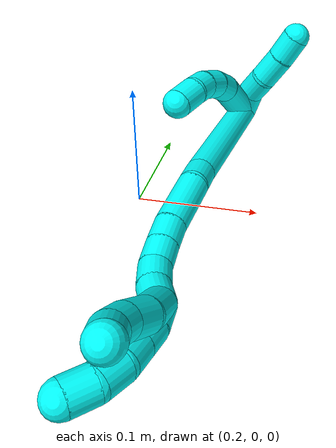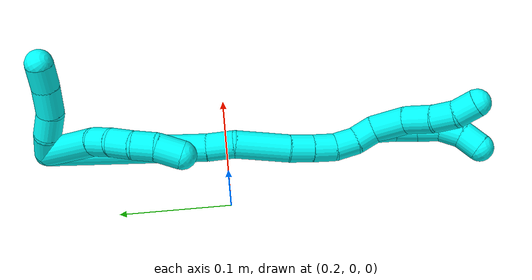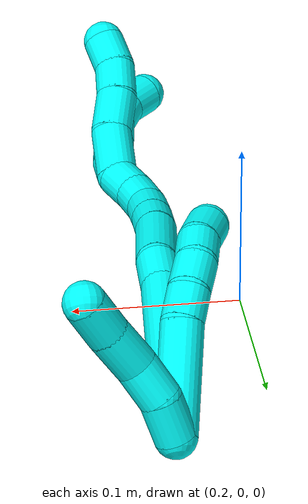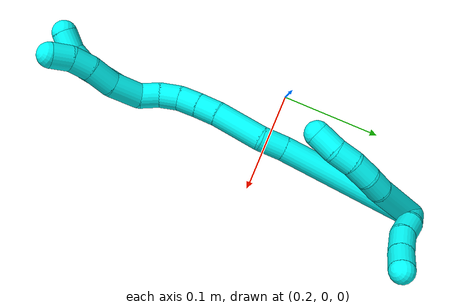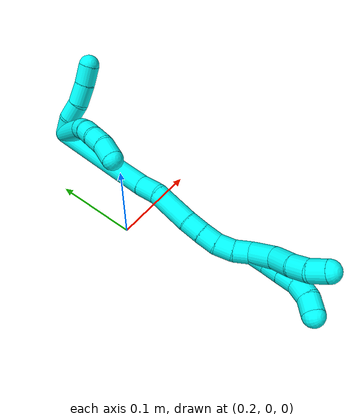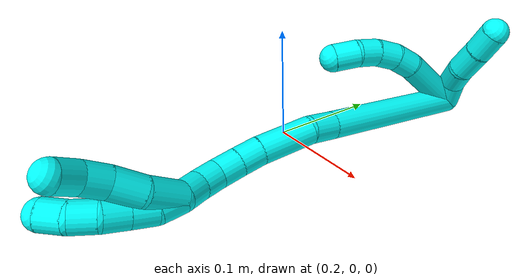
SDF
<sdf version="1.7">
 <world name="default">
  <model name="3">
   <static>0</static>
   <link name="3">
    <collision name="collision-cylinder-e_1_2_8">
     <pose>0.005641 -0.001709 -0.032306 3.08875 0.172638 2.54877</pose>
     <geometry><cylinder><radius>0.0125</radius><length>0.065678</length></cylinder></geometry>
     <surface>
      <friction><ode><mu>1.16</mu><mu2>1.16</mu2><slip1>0</slip1><slip2>0</slip2></ode></friction>
      <contact><ode><kp>1e+06</kp><kd>1</kd><max_vel>0</max_vel><min_depth>0.001</min_depth></ode></contact>
     </surface>
    </collision>
    <visual name="visual-cylinder-e_1_2_8">
     <pose>0.005641 -0.001709 -0.032306 3.08875 0.172638 2.54877</pose>
     <geometry><cylinder><radius>0.0125</radius><length>0.065678</length></cylinder></geometry>
     <material><ambient>0.003922 1 0.996078 1</ambient></material>
    </visual>
    <collision name="collision-cylinder-e_2_8_9">
     <pose>0.013619 -0.006022 -0.074143 2.87488 0.232193 1.43121</pose>
     <geometry><cylinder><radius>0.0125</radius><length>0.020305</length></cylinder></geometry>
     <surface>
      <friction><ode><mu>1.16</mu><mu2>1.16</mu2><slip1>0</slip1><slip2>0</slip2></ode></friction>
      <contact><ode><kp>1e+06</kp><kd>1</kd><max_vel>0</max_vel><min_depth>0.001</min_depth></ode></contact>
     </surface>
    </collision>
    <visual name="visual-cylinder-e_2_8_9">
     <pose>0.013619 -0.006022 -0.074143 2.87488 0.232193 1.43121</pose>
     <geometry><cylinder><radius>0.0125</radius><length>0.020305</length></cylinder></geometry>
     <material><ambient>0.003922 1 0.996078 1</ambient></material>
    </visual>
    <collision name="collision-cylinder-e_3_9_10">
     <pose>0.017459 -0.013603 -0.092831 2.64377 0.143293 0.550374</pose>
     <geometry><cylinder><radius>0.0125</radius><length>0.021061</length></cylinder></geometry>
     <surface>
      <friction><ode><mu>1.16</mu><mu2>1.16</mu2><slip1>0</slip1><slip2>0</slip2></ode></friction>
      <contact><ode><kp>1e+06</kp><kd>1</kd><max_vel>0</max_vel><min_depth>0.001</min_depth></ode></contact>
     </surface>
    </collision>
    <visual name="visual-cylinder-e_3_9_10">
     <pose>0.017459 -0.013603 -0.092831 2.64377 0.143293 0.550374</pose>
     <geometry><cylinder><radius>0.0125</radius><length>0.021061</length></cylinder></geometry>
     <material><ambient>0.003922 1 0.996078 1</ambient></material>
    </visual>
    <collision name="collision-cylinder-e_4_10_11">
     <pose>0.018535 -0.024738 -0.109912 2.48086 -0.042545 -0.123921</pose>
     <geometry><cylinder><radius>0.0125</radius><length>0.020088</length></cylinder></geometry>
     <surface>
      <friction><ode><mu>1.16</mu><mu2>1.16</mu2><slip1>0</slip1><slip2>0</slip2></ode></friction>
      <contact><ode><kp>1e+06</kp><kd>1</kd><max_vel>0</max_vel><min_depth>0.001</min_depth></ode></contact>
     </surface>
    </collision>
    <visual name="visual-cylinder-e_4_10_11">
     <pose>0.018535 -0.024738 -0.109912 2.48086 -0.042545 -0.123921</pose>
     <geometry><cylinder><radius>0.0125</radius><length>0.020088</length></cylinder></geometry>
     <material><ambient>0.003922 1 0.996078 1</ambient></material>
    </visual>
    <collision name="collision-cylinder-e_5_11_6">
     <pose>0.018533 -0.039874 -0.124902 2.23772 0.037175 0.076552</pose>
     <geometry><cylinder><radius>0.0125</radius><length>0.022867</length></cylinder></geometry>
     <surface>
      <friction><ode><mu>1.16</mu><mu2>1.16</mu2><slip1>0</slip1><slip2>0</slip2></ode></friction>
      <contact><ode><kp>1e+06</kp><kd>1</kd><max_vel>0</max_vel><min_depth>0.001</min_depth></ode></contact>
     </surface>
    </collision>
    <visual name="visual-cylinder-e_5_11_6">
     <pose>0.018533 -0.039874 -0.124902 2.23772 0.037175 0.076552</pose>
     <geometry><cylinder><radius>0.0125</radius><length>0.022867</length></cylinder></geometry>
     <material><ambient>0.003922 1 0.996078 1</ambient></material>
    </visual>
    <collision name="collision-cylinder-e_1_2_12">
     <pose>-8.9e-05 0.008487 -0.009256 -2.39954 -0.007059 0.018144</pose>
     <geometry><cylinder><radius>0.0125</radius><length>0.025116</length></cylinder></geometry>
     <surface>
      <friction><ode><mu>1.16</mu><mu2>1.16</mu2><slip1>0</slip1><slip2>0</slip2></ode></friction>
      <contact><ode><kp>1e+06</kp><kd>1</kd><max_vel>0</max_vel><min_depth>0.001</min_depth></ode></contact>
     </surface>
    </collision>
    <visual name="visual-cylinder-e_1_2_12">
     <pose>-8.9e-05 0.008487 -0.009256 -2.39954 -0.007059 0.018144</pose>
     <geometry><cylinder><radius>0.0125</radius><length>0.025116</length></cylinder></geometry>
     <material><ambient>0.003922 1 0.996078 1</ambient></material>
    </visual>
    <collision name="collision-cylinder-e_2_12_13">
     <pose>-0.00353 0.024127 -0.02725 -2.45556 -0.288629 0.772918</pose>
     <geometry><cylinder><radius>0.0125</radius><length>0.02356</length></cylinder></geometry>
     <surface>
      <friction><ode><mu>1.16</mu><mu2>1.16</mu2><slip1>0</slip1><slip2>0</slip2></ode></friction>
      <contact><ode><kp>1e+06</kp><kd>1</kd><max_vel>0</max_vel><min_depth>0.001</min_depth></ode></contact>
     </surface>
    </collision>
    <visual name="visual-cylinder-e_2_12_13">
     <pose>-0.00353 0.024127 -0.02725 -2.45556 -0.288629 0.772918</pose>
     <geometry><cylinder><radius>0.0125</radius><length>0.02356</length></cylinder></geometry>
     <material><ambient>0.003922 1 0.996078 1</ambient></material>
    </visual>
    <collision name="collision-cylinder-e_3_13_14">
     <pose>-0.01008 0.04194 -0.043462 -2.18225 -0.240811 0.457052</pose>
     <geometry><cylinder><radius>0.0125</radius><length>0.02681</length></cylinder></geometry>
     <surface>
      <friction><ode><mu>1.16</mu><mu2>1.16</mu2><slip1>0</slip1><slip2>0</slip2></ode></friction>
      <contact><ode><kp>1e+06</kp><kd>1</kd><max_vel>0</max_vel><min_depth>0.001</min_depth></ode></contact>
     </surface>
    </collision>
    <visual name="visual-cylinder-e_3_13_14">
     <pose>-0.01008 0.04194 -0.043462 -2.18225 -0.240811 0.457052</pose>
     <geometry><cylinder><radius>0.0125</radius><length>0.02681</length></cylinder></geometry>
     <material><ambient>0.003922 1 0.996078 1</ambient></material>
    </visual>
    <collision name="collision-cylinder-e_4_14_5">
     <pose>-0.015208 0.062774 -0.05749 -2.14314 -0.158137 0.288589</pose>
     <geometry><cylinder><radius>0.0125</radius><length>0.024513</length></cylinder></geometry>
     <surface>
      <friction><ode><mu>1.16</mu><mu2>1.16</mu2><slip1>0</slip1><slip2>0</slip2></ode></friction>
      <contact><ode><kp>1e+06</kp><kd>1</kd><max_vel>0</max_vel><min_depth>0.001</min_depth></ode></contact>
     </surface>
    </collision>
    <visual name="visual-cylinder-e_4_14_5">
     <pose>-0.015208 0.062774 -0.05749 -2.14314 -0.158137 0.288589</pose>
     <geometry><cylinder><radius>0.0125</radius><length>0.024513</length></cylinder></geometry>
     <material><ambient>0.003922 1 0.996078 1</ambient></material>
    </visual>
    <collision name="collision-cylinder-e_1_2_15">
     <pose>-0.012661 -0.042595 -0.056659 2.49695 -0.176744 -0.518659</pose>
     <geometry><cylinder><radius>0.0125</radius><length>0.144013</length></cylinder></geometry>
     <surface>
      <friction><ode><mu>1.16</mu><mu2>1.16</mu2><slip1>0</slip1><slip2>0</slip2></ode></friction>
      <contact><ode><kp>1e+06</kp><kd>1</kd><max_vel>0</max_vel><min_depth>0.001</min_depth></ode></contact>
     </surface>
    </collision>
    <visual name="visual-cylinder-e_1_2_15">
     <pose>-0.012661 -0.042595 -0.056659 2.49695 -0.176744 -0.518659</pose>
     <geometry><cylinder><radius>0.0125</radius><length>0.144013</length></cylinder></geometry>
     <material><ambient>0.003922 1 0.996078 1</ambient></material>
    </visual>
    <collision name="collision-cylinder-e_2_15_16">
     <pose>-0.028072 -0.091597 -0.123519 2.58082 -0.224487 -0.74617</pose>
     <geometry><cylinder><radius>0.0125</radius><length>0.024711</length></cylinder></geometry>
     <surface>
      <friction><ode><mu>1.16</mu><mu2>1.16</mu2><slip1>0</slip1><slip2>0</slip2></ode></friction>
      <contact><ode><kp>1e+06</kp><kd>1</kd><max_vel>0</max_vel><min_depth>0.001</min_depth></ode></contact>
     </surface>
    </collision>
    <visual name="visual-cylinder-e_2_15_16">
     <pose>-0.028072 -0.091597 -0.123519 2.58082 -0.224487 -0.74617</pose>
     <geometry><cylinder><radius>0.0125</radius><length>0.024711</length></cylinder></geometry>
     <material><ambient>0.003922 1 0.996078 1</ambient></material>
    </visual>
    <collision name="collision-cylinder-e_3_16_17">
     <pose>-0.035897 -0.116076 -0.149482 2.28804 -0.208563 -0.452448</pose>
     <geometry><cylinder><radius>0.0125</radius><length>0.049024</length></cylinder></geometry>
     <surface>
      <friction><ode><mu>1.16</mu><mu2>1.16</mu2><slip1>0</slip1><slip2>0</slip2></ode></friction>
      <contact><ode><kp>1e+06</kp><kd>1</kd><max_vel>0</max_vel><min_depth>0.001</min_depth></ode></contact>
     </surface>
    </collision>
    <visual name="visual-cylinder-e_3_16_17">
     <pose>-0.035897 -0.116076 -0.149482 2.28804 -0.208563 -0.452448</pose>
     <geometry><cylinder><radius>0.0125</radius><length>0.049024</length></cylinder></geometry>
     <material><ambient>0.003922 1 0.996078 1</ambient></material>
    </visual>
    <collision name="collision-cylinder-e_4_17_18">
     <pose>-0.044259 -0.141824 -0.171787 2.27656 -0.315012 -0.662666</pose>
     <geometry><cylinder><radius>0.0125</radius><length>0.021215</length></cylinder></geometry>
     <surface>
      <friction><ode><mu>1.16</mu><mu2>1.16</mu2><slip1>0</slip1><slip2>0</slip2></ode></friction>
      <contact><ode><kp>1e+06</kp><kd>1</kd><max_vel>0</max_vel><min_depth>0.001</min_depth></ode></contact>
     </surface>
    </collision>
    <visual name="visual-cylinder-e_4_17_18">
     <pose>-0.044259 -0.141824 -0.171787 2.27656 -0.315012 -0.662666</pose>
     <geometry><cylinder><radius>0.0125</radius><length>0.021215</length></cylinder></geometry>
     <material><ambient>0.003922 1 0.996078 1</ambient></material>
    </visual>
    <collision name="collision-cylinder-e_5_18_19">
     <pose>-0.051129 -0.156717 -0.184803 2.30209 -0.354013 -0.762435</pose>
     <geometry><cylinder><radius>0.0125</radius><length>0.020673</length></cylinder></geometry>
     <surface>
      <friction><ode><mu>1.16</mu><mu2>1.16</mu2><slip1>0</slip1><slip2>0</slip2></ode></friction>
      <contact><ode><kp>1e+06</kp><kd>1</kd><max_vel>0</max_vel><min_depth>0.001</min_depth></ode></contact>
     </surface>
    </collision>
    <visual name="visual-cylinder-e_5_18_19">
     <pose>-0.051129 -0.156717 -0.184803 2.30209 -0.354013 -0.762435</pose>
     <geometry><cylinder><radius>0.0125</radius><length>0.020673</length></cylinder></geometry>
     <material><ambient>0.003922 1 0.996078 1</ambient></material>
    </visual>
    <collision name="collision-cylinder-e_6_19_20">
     <pose>-0.059656 -0.169042 -0.198432 2.5215 -0.512301 -1.37063</pose>
     <geometry><cylinder><radius>0.0125</radius><length>0.020172</length></cylinder></geometry>
     <surface>
      <friction><ode><mu>1.16</mu><mu2>1.16</mu2><slip1>0</slip1><slip2>0</slip2></ode></friction>
      <contact><ode><kp>1e+06</kp><kd>1</kd><max_vel>0</max_vel><min_depth>0.001</min_depth></ode></contact>
     </surface>
    </collision>
    <visual name="visual-cylinder-e_6_19_20">
     <pose>-0.059656 -0.169042 -0.198432 2.5215 -0.512301 -1.37063</pose>
     <geometry><cylinder><radius>0.0125</radius><length>0.020172</length></cylinder></geometry>
     <material><ambient>0.003922 1 0.996078 1</ambient></material>
    </visual>
    <collision name="collision-cylinder-e_7_20_1">
     <pose>-0.070658 -0.176919 -0.213175 2.79175 -0.643539 -2.16663</pose>
     <geometry><cylinder><radius>0.0125</radius><length>0.020193</length></cylinder></geometry>
     <surface>
      <friction><ode><mu>1.16</mu><mu2>1.16</mu2><slip1>0</slip1><slip2>0</slip2></ode></friction>
      <contact><ode><kp>1e+06</kp><kd>1</kd><max_vel>0</max_vel><min_depth>0.001</min_depth></ode></contact>
     </surface>
    </collision>
    <visual name="visual-cylinder-e_7_20_1">
     <pose>-0.070658 -0.176919 -0.213175 2.79175 -0.643539 -2.16663</pose>
     <geometry><cylinder><radius>0.0125</radius><length>0.020193</length></cylinder></geometry>
     <material><ambient>0.003922 1 0.996078 1</ambient></material>
    </visual>
    <collision name="collision-cylinder-e_1_1_21">
     <pose>-0.077892 -0.18269 -0.236387 2.95173 -0.073753 -0.739283</pose>
     <geometry><cylinder><radius>0.0125</radius><length>0.031909</length></cylinder></geometry>
     <surface>
      <friction><ode><mu>1.16</mu><mu2>1.16</mu2><slip1>0</slip1><slip2>0</slip2></ode></friction>
      <contact><ode><kp>1e+06</kp><kd>1</kd><max_vel>0</max_vel><min_depth>0.001</min_depth></ode></contact>
     </surface>
    </collision>
    <visual name="visual-cylinder-e_1_1_21">
     <pose>-0.077892 -0.18269 -0.236387 2.95173 -0.073753 -0.739283</pose>
     <geometry><cylinder><radius>0.0125</radius><length>0.031909</length></cylinder></geometry>
     <material><ambient>0.003922 1 0.996078 1</ambient></material>
    </visual>
    <collision name="collision-cylinder-e_2_21_22">
     <pose>-0.07694 -0.189046 -0.264587 2.88104 0.162067 1.10978</pose>
     <geometry><cylinder><radius>0.0125</radius><length>0.026374</length></cylinder></geometry>
     <surface>
      <friction><ode><mu>1.16</mu><mu2>1.16</mu2><slip1>0</slip1><slip2>0</slip2></ode></friction>
      <contact><ode><kp>1e+06</kp><kd>1</kd><max_vel>0</max_vel><min_depth>0.001</min_depth></ode></contact>
     </surface>
    </collision>
    <visual name="visual-cylinder-e_2_21_22">
     <pose>-0.07694 -0.189046 -0.264587 2.88104 0.162067 1.10978</pose>
     <geometry><cylinder><radius>0.0125</radius><length>0.026374</length></cylinder></geometry>
     <material><ambient>0.003922 1 0.996078 1</ambient></material>
    </visual>
    <collision name="collision-cylinder-e_3_22_23">
     <pose>-0.075041 -0.194793 -0.287505 2.91408 -0.021595 -0.188465</pose>
     <geometry><cylinder><radius>0.0125</radius><length>0.021239</length></cylinder></geometry>
     <surface>
      <friction><ode><mu>1.16</mu><mu2>1.16</mu2><slip1>0</slip1><slip2>0</slip2></ode></friction>
      <contact><ode><kp>1e+06</kp><kd>1</kd><max_vel>0</max_vel><min_depth>0.001</min_depth></ode></contact>
     </surface>
    </collision>
    <visual name="visual-cylinder-e_3_22_23">
     <pose>-0.075041 -0.194793 -0.287505 2.91408 -0.021595 -0.188465</pose>
     <geometry><cylinder><radius>0.0125</radius><length>0.021239</length></cylinder></geometry>
     <material><ambient>0.003922 1 0.996078 1</ambient></material>
    </visual>
    <collision name="collision-cylinder-e_4_23_4">
     <pose>-0.078067 -0.197931 -0.307671 3.0661 -0.276641 -2.61177</pose>
     <geometry><cylinder><radius>0.0125</radius><length>0.020478</length></cylinder></geometry>
     <surface>
      <friction><ode><mu>1.16</mu><mu2>1.16</mu2><slip1>0</slip1><slip2>0</slip2></ode></friction>
      <contact><ode><kp>1e+06</kp><kd>1</kd><max_vel>0</max_vel><min_depth>0.001</min_depth></ode></contact>
     </surface>
    </collision>
    <visual name="visual-cylinder-e_4_23_4">
     <pose>-0.078067 -0.197931 -0.307671 3.0661 -0.276641 -2.61177</pose>
     <geometry><cylinder><radius>0.0125</radius><length>0.020478</length></cylinder></geometry>
     <material><ambient>0.003922 1 0.996078 1</ambient></material>
    </visual>
    <collision name="collision-cylinder-e_1_1_24">
     <pose>-0.079822 -0.186162 -0.227722 2.39233 -0.315741 -0.769392</pose>
     <geometry><cylinder><radius>0.0125</radius><length>0.02</length></cylinder></geometry>
     <surface>
      <friction><ode><mu>1.16</mu><mu2>1.16</mu2><slip1>0</slip1><slip2>0</slip2></ode></friction>
      <contact><ode><kp>1e+06</kp><kd>1</kd><max_vel>0</max_vel><min_depth>0.001</min_depth></ode></contact>
     </surface>
    </collision>
    <visual name="visual-cylinder-e_1_1_24">
     <pose>-0.079822 -0.186162 -0.227722 2.39233 -0.315741 -0.769392</pose>
     <geometry><cylinder><radius>0.0125</radius><length>0.02</length></cylinder></geometry>
     <material><ambient>0.003922 1 0.996078 1</ambient></material>
    </visual>
    <collision name="collision-cylinder-e_2_24_25">
     <pose>-0.083634 -0.198067 -0.243049 2.56589 -0.070759 -0.237961</pose>
     <geometry><cylinder><radius>0.0125</radius><length>0.02</length></cylinder></geometry>
     <surface>
      <friction><ode><mu>1.16</mu><mu2>1.16</mu2><slip1>0</slip1><slip2>0</slip2></ode></friction>
      <contact><ode><kp>1e+06</kp><kd>1</kd><max_vel>0</max_vel><min_depth>0.001</min_depth></ode></contact>
     </surface>
    </collision>
    <visual name="visual-cylinder-e_2_24_25">
     <pose>-0.083634 -0.198067 -0.243049 2.56589 -0.070759 -0.237961</pose>
     <geometry><cylinder><radius>0.0125</radius><length>0.02</length></cylinder></geometry>
     <material><ambient>0.003922 1 0.996078 1</ambient></material>
    </visual>
    <collision name="collision-cylinder-e_3_25_26">
     <pose>-0.085038 -0.208714 -0.259919 2.59131 -0.069754 -0.245945</pose>
     <geometry><cylinder><radius>0.0125</radius><length>0.02</length></cylinder></geometry>
     <surface>
      <friction><ode><mu>1.16</mu><mu2>1.16</mu2><slip1>0</slip1><slip2>0</slip2></ode></friction>
      <contact><ode><kp>1e+06</kp><kd>1</kd><max_vel>0</max_vel><min_depth>0.001</min_depth></ode></contact>
     </surface>
    </collision>
    <visual name="visual-cylinder-e_3_25_26">
     <pose>-0.085038 -0.208714 -0.259919 2.59131 -0.069754 -0.245945</pose>
     <geometry><cylinder><radius>0.0125</radius><length>0.02</length></cylinder></geometry>
     <material><ambient>0.003922 1 0.996078 1</ambient></material>
    </visual>
    <collision name="collision-cylinder-e_4_26_27">
     <pose>-0.083983 -0.220671 -0.275598 2.38746 0.176078 0.438608</pose>
     <geometry><cylinder><radius>0.0125</radius><length>0.02</length></cylinder></geometry>
     <surface>
      <friction><ode><mu>1.16</mu><mu2>1.16</mu2><slip1>0</slip1><slip2>0</slip2></ode></friction>
      <contact><ode><kp>1e+06</kp><kd>1</kd><max_vel>0</max_vel><min_depth>0.001</min_depth></ode></contact>
     </surface>
    </collision>
    <visual name="visual-cylinder-e_4_26_27">
     <pose>-0.083983 -0.220671 -0.275598 2.38746 0.176078 0.438608</pose>
     <geometry><cylinder><radius>0.0125</radius><length>0.02</length></cylinder></geometry>
     <material><ambient>0.003922 1 0.996078 1</ambient></material>
    </visual>
    <collision name="collision-cylinder-e_5_27_3">
     <pose>-0.077735 -0.234692 -0.287949 2.18875 0.466313 0.862547</pose>
     <geometry><cylinder><radius>0.0125</radius><length>0.02</length></cylinder></geometry>
     <surface>
      <friction><ode><mu>1.16</mu><mu2>1.16</mu2><slip1>0</slip1><slip2>0</slip2></ode></friction>
      <contact><ode><kp>1e+06</kp><kd>1</kd><max_vel>0</max_vel><min_depth>0.001</min_depth></ode></contact>
     </surface>
    </collision>
    <visual name="visual-cylinder-e_5_27_3">
     <pose>-0.077735 -0.234692 -0.287949 2.18875 0.466313 0.862547</pose>
     <geometry><cylinder><radius>0.0125</radius><length>0.02</length></cylinder></geometry>
     <material><ambient>0.003922 1 0.996078 1</ambient></material>
    </visual>
    <collision name="collision-sphere-3">
     <pose>-0.073239 -0.241973 -0.293125 0 -0 0</pose>
     <geometry><sphere><radius>0.0125</radius></sphere></geometry>
     <surface>
      <friction><ode><mu>1.16</mu><mu2>1.16</mu2><slip1>0</slip1><slip2>0</slip2></ode></friction>
      <contact><ode><kp>1e+06</kp><kd>1</kd><max_vel>0</max_vel><min_depth>0.001</min_depth></ode></contact>
     </surface>
    </collision>
    <visual name="visual-sphere-3">
     <pose>-0.073239 -0.241973 -0.293125 0 -0 0</pose>
     <geometry><sphere><radius>0.0125</radius></sphere></geometry>
     <material><ambient>0.003922 1 0.996078 1</ambient></material>
    </visual>
    <collision name="collision-sphere-27">
     <pose>-0.082231 -0.227412 -0.282774 0 -0 0</pose>
     <geometry><sphere><radius>0.0125</radius></sphere></geometry>
     <surface>
      <friction><ode><mu>1.16</mu><mu2>1.16</mu2><slip1>0</slip1><slip2>0</slip2></ode></friction>
      <contact><ode><kp>1e+06</kp><kd>1</kd><max_vel>0</max_vel><min_depth>0.001</min_depth></ode></contact>
     </surface>
    </collision>
    <visual name="visual-sphere-27">
     <pose>-0.082231 -0.227412 -0.282774 0 -0 0</pose>
     <geometry><sphere><radius>0.0125</radius></sphere></geometry>
     <material><ambient>0.003922 1 0.996078 1</ambient></material>
    </visual>
    <collision name="collision-sphere-26">
     <pose>-0.085735 -0.21393 -0.268422 0 -0 0</pose>
     <geometry><sphere><radius>0.0125</radius></sphere></geometry>
     <surface>
      <friction><ode><mu>1.16</mu><mu2>1.16</mu2><slip1>0</slip1><slip2>0</slip2></ode></friction>
      <contact><ode><kp>1e+06</kp><kd>1</kd><max_vel>0</max_vel><min_depth>0.001</min_depth></ode></contact>
     </surface>
    </collision>
    <visual name="visual-sphere-26">
     <pose>-0.085735 -0.21393 -0.268422 0 -0 0</pose>
     <geometry><sphere><radius>0.0125</radius></sphere></geometry>
     <material><ambient>0.003922 1 0.996078 1</ambient></material>
    </visual>
    <collision name="collision-sphere-25">
     <pose>-0.084341 -0.203497 -0.251416 0 -0 0</pose>
     <geometry><sphere><radius>0.0125</radius></sphere></geometry>
     <surface>
      <friction><ode><mu>1.16</mu><mu2>1.16</mu2><slip1>0</slip1><slip2>0</slip2></ode></friction>
      <contact><ode><kp>1e+06</kp><kd>1</kd><max_vel>0</max_vel><min_depth>0.001</min_depth></ode></contact>
     </surface>
    </collision>
    <visual name="visual-sphere-25">
     <pose>-0.084341 -0.203497 -0.251416 0 -0 0</pose>
     <geometry><sphere><radius>0.0125</radius></sphere></geometry>
     <material><ambient>0.003922 1 0.996078 1</ambient></material>
    </visual>
    <collision name="collision-sphere-24">
     <pose>-0.082927 -0.192636 -0.234682 0 -0 0</pose>
     <geometry><sphere><radius>0.0125</radius></sphere></geometry>
     <surface>
      <friction><ode><mu>1.16</mu><mu2>1.16</mu2><slip1>0</slip1><slip2>0</slip2></ode></friction>
      <contact><ode><kp>1e+06</kp><kd>1</kd><max_vel>0</max_vel><min_depth>0.001</min_depth></ode></contact>
     </surface>
    </collision>
    <visual name="visual-sphere-24">
     <pose>-0.082927 -0.192636 -0.234682 0 -0 0</pose>
     <geometry><sphere><radius>0.0125</radius></sphere></geometry>
     <material><ambient>0.003922 1 0.996078 1</ambient></material>
    </visual>
    <collision name="collision-sphere-4">
     <pose>-0.080864 -0.198674 -0.317493 0 -0 0</pose>
     <geometry><sphere><radius>0.0125</radius></sphere></geometry>
     <surface>
      <friction><ode><mu>1.16</mu><mu2>1.16</mu2><slip1>0</slip1><slip2>0</slip2></ode></friction>
      <contact><ode><kp>1e+06</kp><kd>1</kd><max_vel>0</max_vel><min_depth>0.001</min_depth></ode></contact>
     </surface>
    </collision>
    <visual name="visual-sphere-4">
     <pose>-0.080864 -0.198674 -0.317493 0 -0 0</pose>
     <geometry><sphere><radius>0.0125</radius></sphere></geometry>
     <material><ambient>0.003922 1 0.996078 1</ambient></material>
    </visual>
    <collision name="collision-sphere-23">
     <pose>-0.075271 -0.197188 -0.297849 0 -0 0</pose>
     <geometry><sphere><radius>0.0125</radius></sphere></geometry>
     <surface>
      <friction><ode><mu>1.16</mu><mu2>1.16</mu2><slip1>0</slip1><slip2>0</slip2></ode></friction>
      <contact><ode><kp>1e+06</kp><kd>1</kd><max_vel>0</max_vel><min_depth>0.001</min_depth></ode></contact>
     </surface>
    </collision>
    <visual name="visual-sphere-23">
     <pose>-0.075271 -0.197188 -0.297849 0 -0 0</pose>
     <geometry><sphere><radius>0.0125</radius></sphere></geometry>
     <material><ambient>0.003922 1 0.996078 1</ambient></material>
    </visual>
    <collision name="collision-sphere-22">
     <pose>-0.074812 -0.192398 -0.277162 0 -0 0</pose>
     <geometry><sphere><radius>0.0125</radius></sphere></geometry>
     <surface>
      <friction><ode><mu>1.16</mu><mu2>1.16</mu2><slip1>0</slip1><slip2>0</slip2></ode></friction>
      <contact><ode><kp>1e+06</kp><kd>1</kd><max_vel>0</max_vel><min_depth>0.001</min_depth></ode></contact>
     </surface>
    </collision>
    <visual name="visual-sphere-22">
     <pose>-0.074812 -0.192398 -0.277162 0 -0 0</pose>
     <geometry><sphere><radius>0.0125</radius></sphere></geometry>
     <material><ambient>0.003922 1 0.996078 1</ambient></material>
    </visual>
    <collision name="collision-sphere-21">
     <pose>-0.079068 -0.185693 -0.252012 0 -0 0</pose>
     <geometry><sphere><radius>0.0125</radius></sphere></geometry>
     <surface>
      <friction><ode><mu>1.16</mu><mu2>1.16</mu2><slip1>0</slip1><slip2>0</slip2></ode></friction>
      <contact><ode><kp>1e+06</kp><kd>1</kd><max_vel>0</max_vel><min_depth>0.001</min_depth></ode></contact>
     </surface>
    </collision>
    <visual name="visual-sphere-21">
     <pose>-0.079068 -0.185693 -0.252012 0 -0 0</pose>
     <geometry><sphere><radius>0.0125</radius></sphere></geometry>
     <material><ambient>0.003922 1 0.996078 1</ambient></material>
    </visual>
    <collision name="collision-sphere-1">
     <pose>-0.076716 -0.179687 -0.220762 0 -0 0</pose>
     <geometry><sphere><radius>0.0125</radius></sphere></geometry>
     <surface>
      <friction><ode><mu>1.16</mu><mu2>1.16</mu2><slip1>0</slip1><slip2>0</slip2></ode></friction>
      <contact><ode><kp>1e+06</kp><kd>1</kd><max_vel>0</max_vel><min_depth>0.001</min_depth></ode></contact>
     </surface>
    </collision>
    <visual name="visual-sphere-1">
     <pose>-0.076716 -0.179687 -0.220762 0 -0 0</pose>
     <geometry><sphere><radius>0.0125</radius></sphere></geometry>
     <material><ambient>0.003922 1 0.996078 1</ambient></material>
    </visual>
    <collision name="collision-sphere-6">
     <pose>0.018958 -0.048851 -0.13197 0 -0 0</pose>
     <geometry><sphere><radius>0.0125</radius></sphere></geometry>
     <surface>
      <friction><ode><mu>1.16</mu><mu2>1.16</mu2><slip1>0</slip1><slip2>0</slip2></ode></friction>
      <contact><ode><kp>1e+06</kp><kd>1</kd><max_vel>0</max_vel><min_depth>0.001</min_depth></ode></contact>
     </surface>
    </collision>
    <visual name="visual-sphere-6">
     <pose>0.018958 -0.048851 -0.13197 0 -0 0</pose>
     <geometry><sphere><radius>0.0125</radius></sphere></geometry>
     <material><ambient>0.003922 1 0.996078 1</ambient></material>
    </visual>
    <collision name="collision-sphere-11">
     <pose>0.018108 -0.030896 -0.117834 0 -0 0</pose>
     <geometry><sphere><radius>0.0125</radius></sphere></geometry>
     <surface>
      <friction><ode><mu>1.16</mu><mu2>1.16</mu2><slip1>0</slip1><slip2>0</slip2></ode></friction>
      <contact><ode><kp>1e+06</kp><kd>1</kd><max_vel>0</max_vel><min_depth>0.001</min_depth></ode></contact>
     </surface>
    </collision>
    <visual name="visual-sphere-11">
     <pose>0.018108 -0.030896 -0.117834 0 -0 0</pose>
     <geometry><sphere><radius>0.0125</radius></sphere></geometry>
     <material><ambient>0.003922 1 0.996078 1</ambient></material>
    </visual>
    <collision name="collision-sphere-10">
     <pose>0.018962 -0.01858 -0.101989 0 -0 0</pose>
     <geometry><sphere><radius>0.0125</radius></sphere></geometry>
     <surface>
      <friction><ode><mu>1.16</mu><mu2>1.16</mu2><slip1>0</slip1><slip2>0</slip2></ode></friction>
      <contact><ode><kp>1e+06</kp><kd>1</kd><max_vel>0</max_vel><min_depth>0.001</min_depth></ode></contact>
     </surface>
    </collision>
    <visual name="visual-sphere-10">
     <pose>0.018962 -0.01858 -0.101989 0 -0 0</pose>
     <geometry><sphere><radius>0.0125</radius></sphere></geometry>
     <material><ambient>0.003922 1 0.996078 1</ambient></material>
    </visual>
    <collision name="collision-sphere-9">
     <pose>0.015955 -0.008626 -0.083673 0 -0 0</pose>
     <geometry><sphere><radius>0.0125</radius></sphere></geometry>
     <surface>
      <friction><ode><mu>1.16</mu><mu2>1.16</mu2><slip1>0</slip1><slip2>0</slip2></ode></friction>
      <contact><ode><kp>1e+06</kp><kd>1</kd><max_vel>0</max_vel><min_depth>0.001</min_depth></ode></contact>
     </surface>
    </collision>
    <visual name="visual-sphere-9">
     <pose>0.015955 -0.008626 -0.083673 0 -0 0</pose>
     <geometry><sphere><radius>0.0125</radius></sphere></geometry>
     <material><ambient>0.003922 1 0.996078 1</ambient></material>
    </visual>
    <collision name="collision-sphere-2">
     <geometry><sphere><radius>0.0125</radius></sphere></geometry>
     <surface>
      <friction><ode><mu>1.16</mu><mu2>1.16</mu2><slip1>0</slip1><slip2>0</slip2></ode></friction>
      <contact><ode><kp>1e+06</kp><kd>1</kd><max_vel>0</max_vel><min_depth>0.001</min_depth></ode></contact>
     </surface>
    </collision>
    <visual name="visual-sphere-2">
     <geometry><sphere><radius>0.0125</radius></sphere></geometry>
     <material><ambient>0.003922 1 0.996078 1</ambient></material>
    </visual>
    <collision name="collision-sphere-19">
     <pose>-0.054712 -0.163934 -0.191278 0 -0 0</pose>
     <geometry><sphere><radius>0.0125</radius></sphere></geometry>
     <surface>
      <friction><ode><mu>1.16</mu><mu2>1.16</mu2><slip1>0</slip1><slip2>0</slip2></ode></friction>
      <contact><ode><kp>1e+06</kp><kd>1</kd><max_vel>0</max_vel><min_depth>0.001</min_depth></ode></contact>
     </surface>
    </collision>
    <visual name="visual-sphere-19">
     <pose>-0.054712 -0.163934 -0.191278 0 -0 0</pose>
     <geometry><sphere><radius>0.0125</radius></sphere></geometry>
     <material><ambient>0.003922 1 0.996078 1</ambient></material>
    </visual>
    <collision name="collision-sphere-8">
     <pose>0.011282 -0.003418 -0.064612 0 -0 0</pose>
     <geometry><sphere><radius>0.0125</radius></sphere></geometry>
     <surface>
      <friction><ode><mu>1.16</mu><mu2>1.16</mu2><slip1>0</slip1><slip2>0</slip2></ode></friction>
      <contact><ode><kp>1e+06</kp><kd>1</kd><max_vel>0</max_vel><min_depth>0.001</min_depth></ode></contact>
     </surface>
    </collision>
    <visual name="visual-sphere-8">
     <pose>0.011282 -0.003418 -0.064612 0 -0 0</pose>
     <geometry><sphere><radius>0.0125</radius></sphere></geometry>
     <material><ambient>0.003922 1 0.996078 1</ambient></material>
    </visual>
    <collision name="collision-sphere-12">
     <pose>-0.000177 0.016973 -0.018512 0 -0 0</pose>
     <geometry><sphere><radius>0.0125</radius></sphere></geometry>
     <surface>
      <friction><ode><mu>1.16</mu><mu2>1.16</mu2><slip1>0</slip1><slip2>0</slip2></ode></friction>
      <contact><ode><kp>1e+06</kp><kd>1</kd><max_vel>0</max_vel><min_depth>0.001</min_depth></ode></contact>
     </surface>
    </collision>
    <visual name="visual-sphere-12">
     <pose>-0.000177 0.016973 -0.018512 0 -0 0</pose>
     <geometry><sphere><radius>0.0125</radius></sphere></geometry>
     <material><ambient>0.003922 1 0.996078 1</ambient></material>
    </visual>
    <collision name="collision-sphere-13">
     <pose>-0.006883 0.031281 -0.035989 0 -0 0</pose>
     <geometry><sphere><radius>0.0125</radius></sphere></geometry>
     <surface>
      <friction><ode><mu>1.16</mu><mu2>1.16</mu2><slip1>0</slip1><slip2>0</slip2></ode></friction>
      <contact><ode><kp>1e+06</kp><kd>1</kd><max_vel>0</max_vel><min_depth>0.001</min_depth></ode></contact>
     </surface>
    </collision>
    <visual name="visual-sphere-13">
     <pose>-0.006883 0.031281 -0.035989 0 -0 0</pose>
     <geometry><sphere><radius>0.0125</radius></sphere></geometry>
     <material><ambient>0.003922 1 0.996078 1</ambient></material>
    </visual>
    <collision name="collision-sphere-14">
     <pose>-0.013277 0.0526 -0.050935 0 -0 0</pose>
     <geometry><sphere><radius>0.0125</radius></sphere></geometry>
     <surface>
      <friction><ode><mu>1.16</mu><mu2>1.16</mu2><slip1>0</slip1><slip2>0</slip2></ode></friction>
      <contact><ode><kp>1e+06</kp><kd>1</kd><max_vel>0</max_vel><min_depth>0.001</min_depth></ode></contact>
     </surface>
    </collision>
    <visual name="visual-sphere-14">
     <pose>-0.013277 0.0526 -0.050935 0 -0 0</pose>
     <geometry><sphere><radius>0.0125</radius></sphere></geometry>
     <material><ambient>0.003922 1 0.996078 1</ambient></material>
    </visual>
    <collision name="collision-sphere-5">
     <pose>-0.017138 0.072949 -0.064046 0 -0 0</pose>
     <geometry><sphere><radius>0.0125</radius></sphere></geometry>
     <surface>
      <friction><ode><mu>1.16</mu><mu2>1.16</mu2><slip1>0</slip1><slip2>0</slip2></ode></friction>
      <contact><ode><kp>1e+06</kp><kd>1</kd><max_vel>0</max_vel><min_depth>0.001</min_depth></ode></contact>
     </surface>
    </collision>
    <visual name="visual-sphere-5">
     <pose>-0.017138 0.072949 -0.064046 0 -0 0</pose>
     <geometry><sphere><radius>0.0125</radius></sphere></geometry>
     <material><ambient>0.003922 1 0.996078 1</ambient></material>
    </visual>
    <collision name="collision-sphere-15">
     <pose>-0.025321 -0.085191 -0.113318 0 -0 0</pose>
     <geometry><sphere><radius>0.0125</radius></sphere></geometry>
     <surface>
      <friction><ode><mu>1.16</mu><mu2>1.16</mu2><slip1>0</slip1><slip2>0</slip2></ode></friction>
      <contact><ode><kp>1e+06</kp><kd>1</kd><max_vel>0</max_vel><min_depth>0.001</min_depth></ode></contact>
     </surface>
    </collision>
    <visual name="visual-sphere-15">
     <pose>-0.025321 -0.085191 -0.113318 0 -0 0</pose>
     <geometry><sphere><radius>0.0125</radius></sphere></geometry>
     <material><ambient>0.003922 1 0.996078 1</ambient></material>
    </visual>
    <collision name="collision-sphere-16">
     <pose>-0.030822 -0.098003 -0.133719 0 -0 0</pose>
     <geometry><sphere><radius>0.0125</radius></sphere></geometry>
     <surface>
      <friction><ode><mu>1.16</mu><mu2>1.16</mu2><slip1>0</slip1><slip2>0</slip2></ode></friction>
      <contact><ode><kp>1e+06</kp><kd>1</kd><max_vel>0</max_vel><min_depth>0.001</min_depth></ode></contact>
     </surface>
    </collision>
    <visual name="visual-sphere-16">
     <pose>-0.030822 -0.098003 -0.133719 0 -0 0</pose>
     <geometry><sphere><radius>0.0125</radius></sphere></geometry>
     <material><ambient>0.003922 1 0.996078 1</ambient></material>
    </visual>
    <collision name="collision-sphere-17">
     <pose>-0.040972 -0.134148 -0.165245 0 -0 0</pose>
     <geometry><sphere><radius>0.0125</radius></sphere></geometry>
     <surface>
      <friction><ode><mu>1.16</mu><mu2>1.16</mu2><slip1>0</slip1><slip2>0</slip2></ode></friction>
      <contact><ode><kp>1e+06</kp><kd>1</kd><max_vel>0</max_vel><min_depth>0.001</min_depth></ode></contact>
     </surface>
    </collision>
    <visual name="visual-sphere-17">
     <pose>-0.040972 -0.134148 -0.165245 0 -0 0</pose>
     <geometry><sphere><radius>0.0125</radius></sphere></geometry>
     <material><ambient>0.003922 1 0.996078 1</ambient></material>
    </visual>
    <collision name="collision-sphere-18">
     <pose>-0.047546 -0.149501 -0.178328 0 -0 0</pose>
     <geometry><sphere><radius>0.0125</radius></sphere></geometry>
     <surface>
      <friction><ode><mu>1.16</mu><mu2>1.16</mu2><slip1>0</slip1><slip2>0</slip2></ode></friction>
      <contact><ode><kp>1e+06</kp><kd>1</kd><max_vel>0</max_vel><min_depth>0.001</min_depth></ode></contact>
     </surface>
    </collision>
    <visual name="visual-sphere-18">
     <pose>-0.047546 -0.149501 -0.178328 0 -0 0</pose>
     <geometry><sphere><radius>0.0125</radius></sphere></geometry>
     <material><ambient>0.003922 1 0.996078 1</ambient></material>
    </visual>
    <collision name="collision-sphere-20">
     <pose>-0.0646 -0.174151 -0.205587 0 -0 0</pose>
     <geometry><sphere><radius>0.0125</radius></sphere></geometry>
     <surface>
      <friction><ode><mu>1.16</mu><mu2>1.16</mu2><slip1>0</slip1><slip2>0</slip2></ode></friction>
      <contact><ode><kp>1e+06</kp><kd>1</kd><max_vel>0</max_vel><min_depth>0.001</min_depth></ode></contact>
     </surface>
    </collision>
    <visual name="visual-sphere-20">
     <pose>-0.0646 -0.174151 -0.205587 0 -0 0</pose>
     <geometry><sphere><radius>0.0125</radius></sphere></geometry>
     <material><ambient>0.003922 1 0.996078 1</ambient></material>
    </visual>
    <inertial>
     <pose>-0.031642 -0.087701 -0.134961 0 -0 0</pose>
     <mass>0.75</mass>
     <inertia>
      <ixx>0.000111</ixx>
      <ixy>0</ixy>
      <ixz>0</ixz>
      <iyy>-0.0003</iyy>
      <iyz>0</iyz>
      <izz>0.000169</izz>
     </inertia>
    </inertial>
   </link>
   <pose>0.260866 0.160219 0.01203 2.35912 -0.348855 2.84184</pose>
  </model>
 </world>
</sdf>
